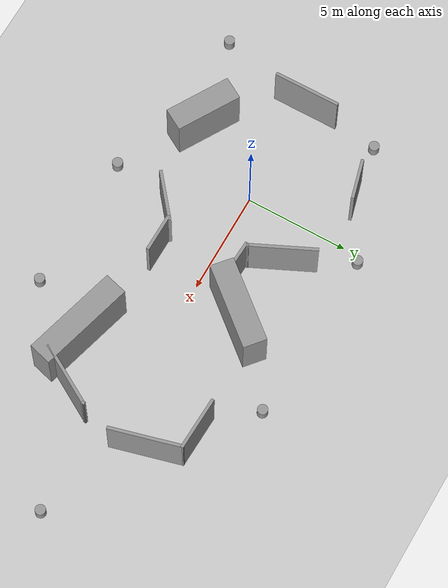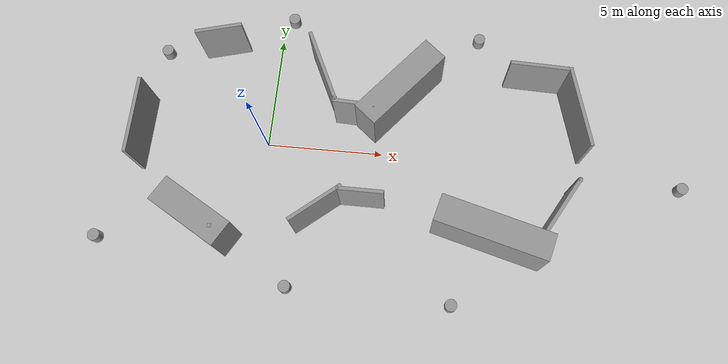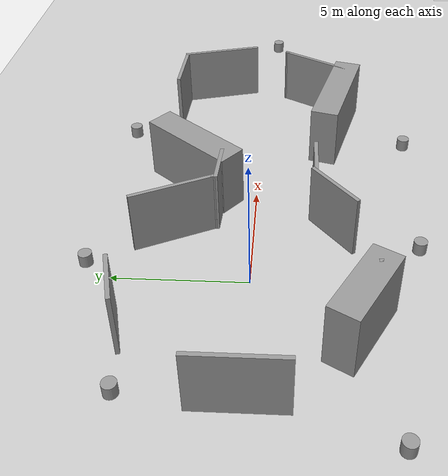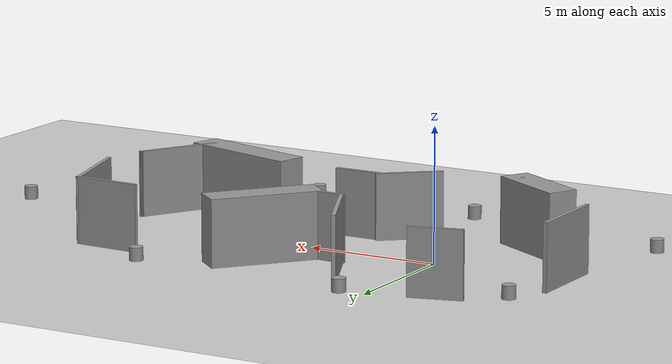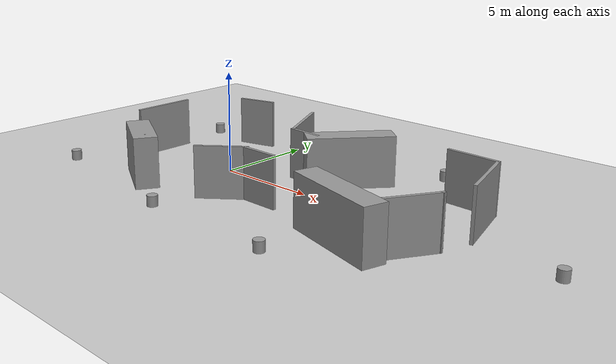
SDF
<sdf version="1.6">
 <world name="default">
  <light name="sun" type="directional">
   <pose>0 0 10 0 -0 0</pose>
   <diffuse>0.8 0.8 0.8 1</diffuse>
   <specular>0.2 0.2 0.2 1</specular>
   <attenuation>
    <range>1000</range>
    <constant>0.9</constant>
    <linear>0.01</linear>
    <quadratic>0.001</quadratic>
   </attenuation>
   <direction>-0.5 0.1 -0.9</direction>
  </light>
  <model name="ground_plane">
   <static>1</static>
   <link name="link">
    <collision name="collision">
     <geometry><plane><normal>0 0 1</normal><size>100 100</size></plane></geometry>
     <surface>
      <contact><collide_bitmask>65535</collide_bitmask></contact>
      <friction><ode><mu>100</mu><mu2>50</mu2></ode></friction>
     </surface>
    </collision>
    <visual name="visual">
     <cast_shadows>0</cast_shadows>
     <geometry><plane><normal>0 0 1</normal><size>100 100</size></plane></geometry>
     <material>
      <script><uri>file://media/materials/scripts/gazebo.material</uri><name>Gazebo/Grey</name></script>
     </material>
    </visual>
   </link>
  </model>
  <gravity>0 0 -9.8</gravity>
  <magnetic_field>6e-06 2.3e-05 -4.2e-05</magnetic_field>
  <atmosphere type="adiabatic"/>
  <physics name="default_physics" default="0" type="ode">
   <max_step_size>0.001</max_step_size>
   <real_time_factor>1</real_time_factor>
   <real_time_update_rate>1000</real_time_update_rate>
  </physics>
  <scene><ambient>0.4 0.4 0.4 1</ambient><background>0.7 0.7 0.7 1</background><shadows>1</shadows></scene>
  <audio><device>default</device></audio>
  <spherical_coordinates>
   <surface_model>EARTH_WGS84</surface_model>
   <latitude_deg>0</latitude_deg>
   <longitude_deg>0</longitude_deg>
   <elevation>0</elevation>
   <heading_deg>0</heading_deg>
  </spherical_coordinates>
  <model name="TestBuilding">
   <pose>4.1419 -0.224897 0 0 -0 0</pose>
   <link name="Wall_0">
    <collision name="Wall_0_Collision">
     <geometry><box><size>3.25 0.15 2.5</size></box></geometry>
     <pose>0 0 1.25 0 -0 0</pose>
    </collision>
    <visual name="Wall_0_Visual">
     <pose>0 0 1.25 0 -0 0</pose>
     <geometry><box><size>3.25 0.15 2.5</size></box></geometry>
     <material>
      <script><uri>file://media/materials/scripts/gazebo.material</uri><name>Gazebo/Grey</name></script>
      <ambient>1 1 1 1</ambient>
     </material>
     <meta><layer>0</layer></meta>
    </visual>
    <pose>-9.39109 0.282277 0 0 -0 1.5708</pose>
   </link>
   <link name="Wall_11">
    <collision name="Wall_11_Collision">
     <geometry><box><size>2.50475 0.15 2.5</size></box></geometry>
     <pose>0 0 1.25 0 -0 0</pose>
    </collision>
    <visual name="Wall_11_Visual">
     <pose>0 0 1.25 0 -0 0</pose>
     <geometry><box><size>2.50475 0.15 2.5</size></box></geometry>
     <material>
      <script><uri>file://media/materials/scripts/gazebo.material</uri><name>Gazebo/Grey</name></script>
      <ambient>1 1 1 1</ambient>
     </material>
     <meta><layer>0</layer></meta>
    </visual>
    <pose>-1.4998 -2.72673 0 0 -0 0.687447</pose>
   </link>
   <link name="Wall_12">
    <collision name="Wall_12_Collision">
     <geometry><box><size>1.90786 0.15 2.5</size></box></geometry>
     <pose>0 0 1.25 0 -0 0</pose>
    </collision>
    <visual name="Wall_12_Visual">
     <pose>0 0 1.25 0 -0 0</pose>
     <geometry><box><size>1.90786 0.15 2.5</size></box></geometry>
     <material>
      <script><uri>file://media/materials/scripts/gazebo.material</uri><name>Gazebo/Grey</name></script>
      <ambient>1 1 1 1</ambient>
     </material>
     <meta><layer>0</layer></meta>
    </visual>
    <pose>0.242546 -2.07721 0 0 -0 -0.005173</pose>
   </link>
   <link name="Wall_14">
    <collision name="Wall_14_Collision">
     <geometry><box><size>4.74042 1.14 2.5</size></box></geometry>
     <pose>0 0 1.25 0 -0 0</pose>
    </collision>
    <visual name="Wall_14_Visual">
     <pose>0 0 1.25 0 -0 0</pose>
     <geometry><box><size>4.74042 1.14 2.5</size></box></geometry>
     <material>
      <script><uri>file://media/materials/scripts/gazebo.material</uri><name>Gazebo/Grey</name></script>
      <ambient>1 1 1 1</ambient>
     </material>
     <meta><layer>0</layer></meta>
    </visual>
    <pose>5.6341 -3.0791 0 0 -0 -0.261819</pose>
   </link>
   <link name="Wall_15">
    <collision name="Wall_15_Collision">
     <geometry><box><size>3.25 0.15 2.5</size></box></geometry>
     <pose>0 0 1.25 0 -0 0</pose>
    </collision>
    <visual name="Wall_15_Visual">
     <pose>0 0 1.25 0 -0 0</pose>
     <geometry><box><size>3.25 0.15 2.5</size></box></geometry>
     <material>
      <script><uri>file://media/materials/scripts/gazebo.material</uri><name>Gazebo/Grey</name></script>
      <ambient>1 1 1 1</ambient>
     </material>
     <meta><layer>0</layer></meta>
    </visual>
    <pose>8.14796 -2.20274 0 0 -0 1.04729</pose>
   </link>
   <link name="Wall_16">
    <collision name="Wall_16_Collision">
     <geometry><box><size>0.15 0.15 2.5</size></box></geometry>
     <pose>0 0 1.25 0 -0 0</pose>
    </collision>
    <visual name="Wall_16_Visual">
     <pose>0 0 1.25 0 -0 0</pose>
     <geometry><box><size>0.15 0.15 2.5</size></box></geometry>
     <material>
      <script><uri>file://media/materials/scripts/gazebo.material</uri><name>Gazebo/Grey</name></script>
      <ambient>1 1 1 1</ambient>
     </material>
     <meta><layer>0</layer></meta>
    </visual>
    <pose>8.92282 -0.860369 0 0 -0 0</pose>
   </link>
   <link name="Wall_18">
    <collision name="Wall_18_Collision">
     <geometry><box><size>3.5 0.15 2.5</size></box></geometry>
     <pose>0 0 1.25 0 -0 0</pose>
    </collision>
    <visual name="Wall_18_Visual">
     <pose>0 0 1.25 0 -0 0</pose>
     <geometry><box><size>3.5 0.15 2.5</size></box></geometry>
     <material>
      <script><uri>file://media/materials/scripts/gazebo.material</uri><name>Gazebo/Grey</name></script>
      <ambient>1 1 1 1</ambient>
     </material>
     <meta><layer>0</layer></meta>
    </visual>
    <pose>8.94071 2.30098 0 0 -0 1.8326</pose>
   </link>
   <link name="Wall_19">
    <collision name="Wall_19_Collision">
     <geometry><box><size>2.60792 0.15 2.5</size></box></geometry>
     <pose>0 0 1.25 0 -0 0</pose>
    </collision>
    <visual name="Wall_19_Visual">
     <pose>0 0 1.25 0 -0 0</pose>
     <geometry><box><size>2.60792 0.15 2.5</size></box></geometry>
     <material>
      <script><uri>file://media/materials/scripts/gazebo.material</uri><name>Gazebo/Grey</name></script>
      <ambient>1 1 1 1</ambient>
     </material>
     <meta><layer>0</layer></meta>
    </visual>
    <pose>7.27901 3.96268 0 0 -0 3.10596</pose>
   </link>
   <link name="Wall_21">
    <collision name="Wall_21_Collision">
     <geometry><box><size>4.20051 1.14 2.5</size></box></geometry>
     <pose>0 0 1.25 0 -0 0</pose>
    </collision>
    <visual name="Wall_21_Visual">
     <pose>0 0 1.25 0 -0 0</pose>
     <geometry><box><size>4.20051 1.14 2.5</size></box></geometry>
     <material>
      <script><uri>file://media/materials/scripts/gazebo.material</uri><name>Gazebo/Grey</name></script>
      <ambient>1 1 1 1</ambient>
     </material>
     <meta><layer>0</layer></meta>
    </visual>
    <pose>1.4321 2.7309 0 0 -0 -2.26503</pose>
   </link>
   <link name="Wall_22">
    <collision name="Wall_22_Collision">
     <geometry><box><size>1.81594 0.15 2.5</size></box></geometry>
     <pose>0 0 1.25 0 -0 0</pose>
    </collision>
    <visual name="Wall_22_Visual">
     <pose>0 0 1.25 0 -0 0</pose>
     <geometry><box><size>1.81594 0.15 2.5</size></box></geometry>
     <material>
      <script><uri>file://media/materials/scripts/gazebo.material</uri><name>Gazebo/Grey</name></script>
      <ambient>1 1 1 1</ambient>
     </material>
     <meta><layer>0</layer></meta>
    </visual>
    <pose>-0.378827 1.59643 0 0 -0 3.09171</pose>
   </link>
   <link name="Wall_23">
    <collision name="Wall_23_Collision">
     <geometry><box><size>0.15 0.15 2.5</size></box></geometry>
     <pose>0 0 1.25 0 -0 0</pose>
    </collision>
    <visual name="Wall_23_Visual">
     <pose>0 0 1.25 0 -0 0</pose>
     <geometry><box><size>0.15 0.15 2.5</size></box></geometry>
     <material>
      <script><uri>file://media/materials/scripts/gazebo.material</uri><name>Gazebo/Grey</name></script>
      <ambient>1 1 1 1</ambient>
     </material>
     <meta><layer>0</layer></meta>
    </visual>
    <pose>-1.21076 1.73101 0 0 -0 0</pose>
   </link>
   <link name="Wall_25">
    <collision name="Wall_25_Collision">
     <geometry><box><size>3.24004 1.14 2.5</size></box></geometry>
     <pose>0 0 1.25 0 -0 0</pose>
    </collision>
    <visual name="Wall_25_Visual">
     <pose>0 0 1.25 0 -0 0</pose>
     <geometry><box><size>3.24004 1.14 2.5</size></box></geometry>
     <material>
      <script><uri>file://media/materials/scripts/gazebo.material</uri><name>Gazebo/Grey</name></script>
      <ambient>1 1 1 1</ambient>
     </material>
     <meta><layer>0</layer></meta>
    </visual>
    <pose>-6.3549 -3.5061 0 0 -0 -0.523754</pose>
   </link>
   <link name="Wall_26">
    <collision name="Wall_26_Collision">
     <geometry><box><size>0.15 0.15 2.5</size></box></geometry>
     <pose>0 0 1.25 0 -0 0</pose>
    </collision>
    <visual name="Wall_26_Visual">
     <pose>0 0 1.25 0 -0 0</pose>
     <geometry><box><size>0.15 0.15 2.5</size></box></geometry>
     <material>
      <script><uri>file://media/materials/scripts/gazebo.material</uri><name>Gazebo/Grey</name></script>
      <ambient>1 1 1 1</ambient>
     </material>
     <meta><layer>0</layer></meta>
    </visual>
    <pose>-5.4459 -4.0311 0 0 -0 0</pose>
   </link>
   <link name="Wall_28">
    <collision name="Wall_28_Collision">
     <geometry><box><size>2 0.15 2.5</size></box></geometry>
     <pose>0 0 1.25 0 -0 0</pose>
    </collision>
    <visual name="Wall_28_Visual">
     <pose>0 0 1.25 0 -0 0</pose>
     <geometry><box><size>2 0.15 2.5</size></box></geometry>
     <material>
      <script><uri>file://media/materials/scripts/gazebo.material</uri><name>Gazebo/Grey</name></script>
      <ambient>1 1 1 1</ambient>
     </material>
     <meta><layer>0</layer></meta>
    </visual>
    <pose>-6.52358 4.47866 0 0 -0 0.261799</pose>
   </link>
   <link name="Wall_8">
    <collision name="Wall_8_Collision">
     <geometry><box><size>3.28723 0.15 2.5</size></box></geometry>
     <pose>0 0 1.25 0 -0 0</pose>
    </collision>
    <visual name="Wall_8_Visual">
     <pose>0 0 1.25 0 -0 0</pose>
     <geometry><box><size>3.28723 0.15 2.5</size></box></geometry>
     <material>
      <script><uri>file://media/materials/scripts/gazebo.material</uri><name>Gazebo/Grey</name></script>
      <ambient>1 1 1 1</ambient>
     </material>
     <meta><layer>0</layer></meta>
    </visual>
    <pose>-1.88343 3.14807 0 0 -0 -1.12759</pose>
   </link>
   <static>1</static>
  </model>
  <model name="uwb_anchor0">
   <pose>-4.98991 3.82784 0.499992 -3e-06 4e-06 0</pose>
   <link name="link">
    <inertial>
     <mass>1</mass>
     <inertia><ixx>0.145833</ixx><ixy>0</ixy><ixz>0</ixz><iyy>0.145833</iyy><iyz>0</iyz><izz>0.125</izz></inertia>
    </inertial>
    <collision name="collision">
     <geometry><cylinder><radius>0.25</radius><length>.5</length></cylinder></geometry>
    </collision>
    <visual name="visual">
     <geometry><cylinder><radius>0.25</radius><length>.5</length></cylinder></geometry>
     <material>
      <script><name>Gazebo/Grey</name><uri>file://media/materials/scripts/gazebo.material</uri></script>
     </material>
    </visual>
   </link>
  </model>
  <model name="uwb_anchor1">
   <pose>0.468796 5.90518 0.499998 3e-06 -4e-06 0</pose>
   <link name="link">
    <inertial>
     <mass>1</mass>
     <inertia><ixx>0.145833</ixx><ixy>0</ixy><ixz>0</ixz><iyy>0.145833</iyy><iyz>0</iyz><izz>0.125</izz></inertia>
    </inertial>
    <collision name="collision">
     <geometry><cylinder><radius>0.25</radius><length>.5</length></cylinder></geometry>
    </collision>
    <visual name="visual">
     <geometry><cylinder><radius>0.25</radius><length>.5</length></cylinder></geometry>
     <material>
      <script><name>Gazebo/Grey</name><uri>file://media/materials/scripts/gazebo.material</uri></script>
     </material>
    </visual>
   </link>
  </model>
  <model name="uwb_anchor2">
   <pose>1.63044 -6.11813 0.499992 -3e-06 -4e-06 -0</pose>
   <link name="link">
    <inertial>
     <mass>1</mass>
     <inertia><ixx>0.145833</ixx><ixy>0</ixy><ixz>0</ixz><iyy>0.145833</iyy><iyz>0</iyz><izz>0.125</izz></inertia>
    </inertial>
    <collision name="collision">
     <geometry><cylinder><radius>0.25</radius><length>.5</length></cylinder></geometry>
    </collision>
    <visual name="visual">
     <geometry><cylinder><radius>0.25</radius><length>.5</length></cylinder></geometry>
     <material>
      <script><name>Gazebo/Grey</name><uri>file://media/materials/scripts/gazebo.material</uri></script>
     </material>
    </visual>
   </link>
  </model>
  <model name="uwb_anchor3">
   <pose>-6.48384 -4.73447 0.499993 -3e-06 -3e-06 0</pose>
   <link name="link">
    <inertial>
     <mass>1</mass>
     <inertia><ixx>0.145833</ixx><ixy>0</ixy><ixz>0</ixz><iyy>0.145833</iyy><iyz>0</iyz><izz>0.125</izz></inertia>
    </inertial>
    <collision name="collision">
     <geometry><cylinder><radius>0.25</radius><length>.5</length></cylinder></geometry>
    </collision>
    <visual name="visual">
     <geometry><cylinder><radius>0.25</radius><length>.5</length></cylinder></geometry>
     <material>
      <script><name>Gazebo/Grey</name><uri>file://media/materials/scripts/gazebo.material</uri></script>
     </material>
    </visual>
   </link>
  </model>
  <model name="uwb_anchor4">
   <pose>8.90326 5.63888 0.499997 3e-06 4e-06 -0</pose>
   <link name="link">
    <inertial>
     <mass>1</mass>
     <inertia><ixx>0.145833</ixx><ixy>0</ixy><ixz>0</ixz><iyy>0.145833</iyy><iyz>0</iyz><izz>0.125</izz></inertia>
    </inertial>
    <collision name="collision">
     <geometry><cylinder><radius>0.25</radius><length>.5</length></cylinder></geometry>
    </collision>
    <visual name="visual">
     <geometry><cylinder><radius>0.25</radius><length>.5</length></cylinder></geometry>
     <material>
      <script><name>Gazebo/Grey</name><uri>file://media/materials/scripts/gazebo.material</uri></script>
     </material>
    </visual>
   </link>
  </model>
  <model name="uwb_anchor5">
   <pose>8.39091 -6.26215 0.499993 -3e-06 -4e-06 -0</pose>
   <link name="link">
    <inertial>
     <mass>1</mass>
     <inertia><ixx>0.145833</ixx><ixy>0</ixy><ixz>0</ixz><iyy>0.145833</iyy><iyz>0</iyz><izz>0.125</izz></inertia>
    </inertial>
    <collision name="collision">
     <geometry><cylinder><radius>0.25</radius><length>.5</length></cylinder></geometry>
    </collision>
    <visual name="visual">
     <geometry><cylinder><radius>0.25</radius><length>.5</length></cylinder></geometry>
     <material>
      <script><name>Gazebo/Grey</name><uri>file://media/materials/scripts/gazebo.material</uri></script>
     </material>
    </visual>
   </link>
  </model>
  <model name="uwb_anchor6">
   <pose>17.7703 -0.565941 0.499997 3e-06 4e-06 -0</pose>
   <link name="link">
    <inertial>
     <mass>1</mass>
     <inertia><ixx>0.145833</ixx><ixy>0</ixy><ixz>0</ixz><iyy>0.145833</iyy><iyz>0</iyz><izz>0.125</izz></inertia>
    </inertial>
    <collision name="collision">
     <geometry><cylinder><radius>0.25</radius><length>.5</length></cylinder></geometry>
    </collision>
    <visual name="visual">
     <geometry><cylinder><radius>0.25</radius><length>.5</length></cylinder></geometry>
     <material>
      <script><name>Gazebo/Grey</name><uri>file://media/materials/scripts/gazebo.material</uri></script>
     </material>
    </visual>
   </link>
  </model>
 </world>
</sdf>
